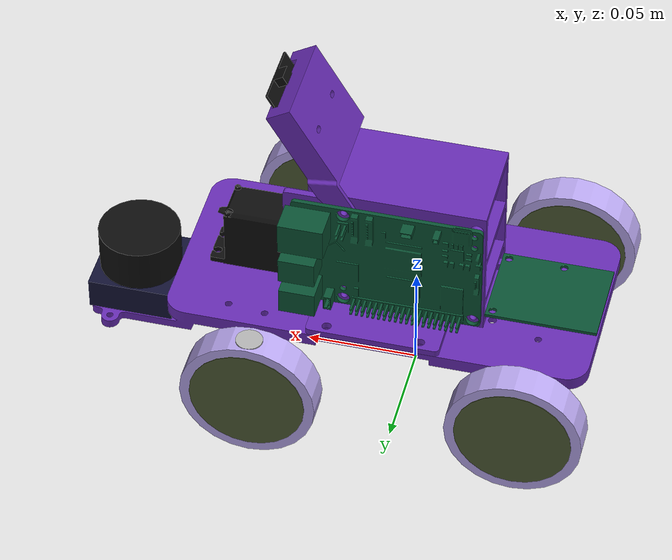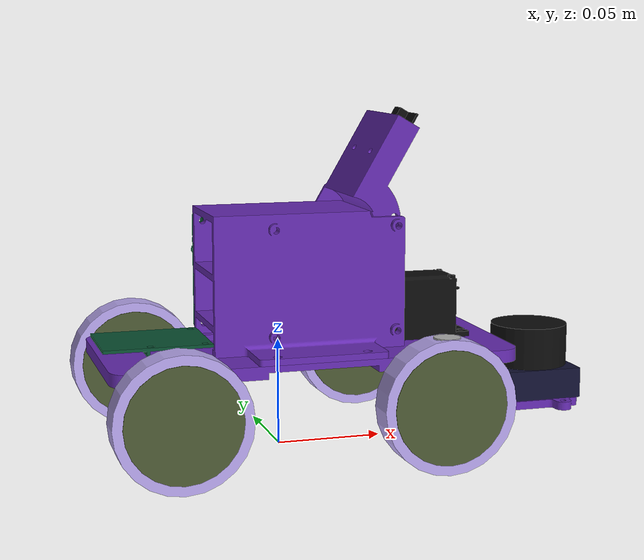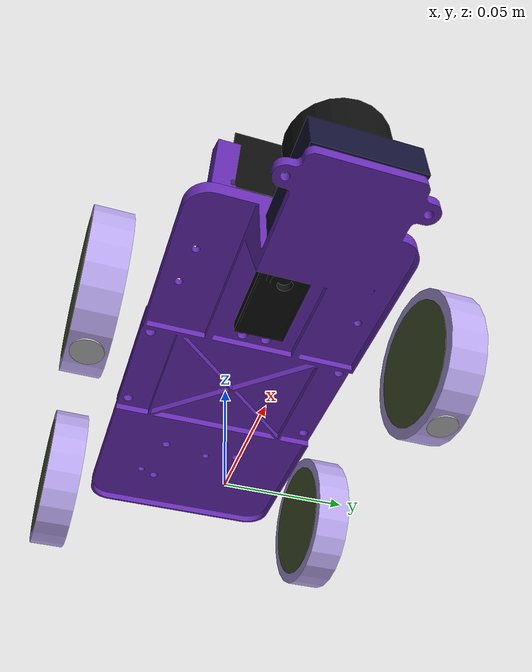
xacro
<?xml version="1.0"?>
<robot name="robotek" xmlns:xacro="http://www.ros.org/wiki/xacro">

  <!-- Gazebo 8 shares this limiter between linear m/s and angular rad/s. -->
  <xacro:arg name="ackermann_velocity_limit" default="1.0"/>
  <xacro:arg name="ackermann_steer_p_gain" default="1.0"/>
  <!-- gz-sim 8 applies this limit to BOTH linear and angular (yaw-rate) speed. -->
  <xacro:arg name="ackermann_acceleration" default="2.0"/>
  <xacro:arg name="sensor_noise" default="false"/>
  <xacro:arg name="real_sensors" default="false"/>
  <xacro:property name="real" value="${'$(arg real_sensors)' == 'true'}"/>

  <!-- ============================ parameters ============================ -->
  <xacro:property name="wheel_radius" value="0.0305"/>
  <xacro:property name="wheel_width"  value="0.0145"/>
  <xacro:property name="wheel_base"   value="0.1174"/>
  <xacro:property name="track_front"  value="0.1335"/>
  <xacro:property name="track_rear"   value="0.1235"/>
  <xacro:property name="steer_limit"  value="0.4363323129985824"/> <!-- 25 degrees -->

  <xacro:property name="chassis_len"  value="0.189"/>
  <xacro:property name="chassis_x"    value="0.00935"/>
  <xacro:property name="chassis_wid"  value="0.090"/>
  <xacro:property name="chassis_hgt"  value="0.030"/>
  <xacro:property name="chassis_z"    value="0.045"/>

  <xacro:property name="body_mass"    value="0.80"/>

  <xacro:property name="mesh_x" value="0.02495"/>
  <xacro:property name="mesh_z" value="0.0379"/>
  <xacro:macro name="step_mesh" params="name file material">
    <visual name="${name}">
      <origin xyz="${mesh_x} 0 ${mesh_z}" rpy="1.5707963 0 3.1415927"/>
      <geometry><mesh filename="package://robotek_description/meshes/${file}" scale="0.001 0.001 0.001"/></geometry>
      <material name="${material}"/>
    </visual>
  </xacro:macro>
  <xacro:property name="wheel_mass"   value="0.05"/>

  <!-- ============================= materials ============================ -->
  <material name="dark_grey"><color rgba="0.15 0.15 0.18 1.0"/></material>
  <material name="blue"><color rgba="0.10 0.25 0.65 1.0"/></material>
  <material name="black"><color rgba="0.05 0.05 0.05 1.0"/></material>
  <material name="silver"><color rgba="0.7 0.7 0.7 1.0"/></material>
  <material name="green"><color rgba="0.1 0.6 0.2 1.0"/></material>
  <material name="purple"><color rgba="0.40 0.17 0.70 1.0"/></material>
  <material name="pcb_green"><color rgba="0.04 0.32 0.20 1.0"/></material>
  <material name="lilac"><color rgba="0.72 0.65 0.93 1.0"/></material>
  <material name="olive"><color rgba="0.30 0.35 0.20 1.0"/></material>
  <material name="lidar_navy"><color rgba="0.07 0.07 0.20 1.0"/></material>

  <!-- ============================== base =============================== -->
  <link name="base_footprint"/>

  <joint name="base_footprint_joint" type="fixed">
    <parent link="base_footprint"/>
    <child link="base_link"/>
    <origin xyz="0 0 0" rpy="0 0 0"/>
  </joint>

  <link name="base_link">
    <inertial>
      <origin xyz="0 0 0.05" rpy="0 0 0"/>
      <mass value="${body_mass}"/>
      <inertia ixx="1.207e-3" ixy="0" ixz="0"
               iyy="2.756e-3" iyz="0"
               izz="2.629e-3"/>
    </inertial>

    <!-- chassis plate -->
    <xacro:step_mesh name="chassis" file="base_plate.stl" material="purple"/>
    <collision name="chassis_col">
      <origin xyz="${chassis_x} 0 ${chassis_z}" rpy="0 0 0"/>
      <geometry><box size="${chassis_len} ${chassis_wid} ${chassis_hgt}"/></geometry>
    </collision>

    <!-- LiDAR and its plate tab: the nose reaches 147.7 mm ahead of base_link, so it touches pillars
         and walls before the plate does (tab 54 mm wide, z 12 to 51 mm) -->
    <collision name="lidar_nose_col">
      <origin xyz="0.1258 0 0.0314" rpy="0 0 0"/>
      <geometry><box size="0.0438 0.054 0.0388"/></geometry>
    </collision>

    <!-- parts of the sensor plate (visual only; the LiDAR has none so it cannot occlude its own scan) -->
    <xacro:step_mesh name="case" file="case.stl" material="purple"/>
    <xacro:step_mesh name="camera_support" file="camera_support.stl" material="purple"/>
    <xacro:step_mesh name="camera_body" file="camera.stl" material="black"/>
    <xacro:step_mesh name="steering_servo" file="servo.stl" material="black"/>
    <xacro:step_mesh name="raspberry_pi" file="raspberry_pi.stl" material="pcb_green"/>
    <xacro:step_mesh name="driver_board" file="driver_board.stl" material="pcb_green"/>
    <visual name="lidar_body">
      <origin xyz="0.12835 0 0.0233" rpy="0 0 0"/>
      <geometry><box size="0.0386 0.0386 0.0146"/></geometry>
      <material name="lidar_navy"/>
    </visual>
    <visual name="lidar_head">
      <origin xyz="0.12835 0 0.0407" rpy="0 0 0"/>
      <geometry><cylinder radius="0.0187" length="0.0202"/></geometry>
      <material name="black"/>
    </visual>
  </link>

  <!-- ============================ IMU link ============================= -->
  <link name="imu_link">
    <inertial><mass value="0.01"/>
      <inertia ixx="1e-6" ixy="0" ixz="0" iyy="1e-6" iyz="0" izz="1e-6"/>
    </inertial>
    <visual><geometry><box size="0.02 0.02 0.005"/></geometry><material name="silver"/></visual>
  </link>
  <joint name="imu_joint" type="fixed">
    <parent link="base_link"/><child link="imu_link"/>
    <origin xyz="0 0 0.061" rpy="0 0 0"/>
  </joint>

  <!-- =========================== LiDAR link ============================ -->
  <!-- STL-19P TOF lidar: 38.59 x 38.59 x 34.8 mm, mounted low at the front
       so the scan plane sits within the 100 mm-high walls. -->
  <link name="lidar_link">
    <inertial><origin xyz="0 0 0.0175"/><mass value="0.10"/>
      <inertia ixx="4.2e-5" ixy="0" ixz="0" iyy="4.2e-5" iyz="0" izz="4.6e-5"/>
    </inertial>
    <!-- No visual: gpu_lidar would otherwise hit its own housing at the scan
         plane and self-occlude. The housing is cosmetic only. -->
  </link>
  <joint name="lidar_joint" type="fixed">
    <parent link="base_link"/><child link="lidar_link"/>
    <origin xyz="0.128 0 0.030" rpy="0 0 0"/>
  </joint>

  <!-- =========================== camera link =========================== -->
  <link name="camera_link">
    <inertial><mass value="0.03"/>
      <inertia ixx="2e-6" ixy="0" ixz="0" iyy="2e-6" iyz="0" izz="2e-6"/>
    </inertial>
  </link>
  <joint name="camera_joint" type="fixed">
    <parent link="base_link"/><child link="camera_link"/>
    <!-- mounted behind the lidar and pitched ~23 deg down toward the floor -->
    <origin xyz="0.0565 0 ${0.1446 if real else 0.095}" rpy="0 ${0.17 if real else 0.4} ${0.077 if real else 0}"/>
  </joint>

  <!-- ======================= steering knuckles ========================= -->
  <xacro:macro name="steer_knuckle" params="side sign">
    <link name="front_${side}_steer_link">
      <inertial><mass value="0.02"/>
        <inertia ixx="5e-7" ixy="0" ixz="0" iyy="5e-7" iyz="0" izz="5e-7"/>
      </inertial>
      <visual><geometry><cylinder radius="0.006" length="${wheel_radius*2}"/></geometry>
        <material name="silver"/></visual>
    </link>
    <joint name="front_${side}_steering_joint" type="revolute">
      <parent link="base_link"/>
      <child link="front_${side}_steer_link"/>
      <origin xyz="${wheel_base/2} ${sign*track_front/2} ${wheel_radius}" rpy="0 0 0"/>
      <axis xyz="0 0 1"/>
      <limit lower="${-steer_limit}" upper="${steer_limit}" effort="5.0" velocity="5.0"/>
    </joint>
  </xacro:macro>

  <xacro:steer_knuckle side="left"  sign="1"/>
  <xacro:steer_knuckle side="right" sign="-1"/>

  <!-- ============================== wheels ============================= -->
  <xacro:macro name="wheel" params="name parent x y z">
    <link name="${name}">
      <inertial>
        <mass value="${wheel_mass}"/>
        <inertia ixx="1.185e-5" ixy="0" ixz="0"
                 iyy="1.185e-5" iyz="0" izz="2.25e-5"/>
      </inertial>
      <visual name="tyre"><origin rpy="1.5708 0 0"/>
        <geometry><cylinder radius="${wheel_radius}" length="${wheel_width}"/></geometry>
        <material name="lilac"/></visual>
      <visual name="hub"><origin rpy="1.5708 0 0"/>
        <geometry><cylinder radius="${wheel_radius-0.0045}" length="${wheel_width+0.0006}"/></geometry>
        <material name="olive"/></visual>
      <collision><origin rpy="1.5708 0 0"/>
        <geometry><cylinder radius="${wheel_radius}" length="${wheel_width}"/></geometry>
      </collision>
    </link>
    <joint name="${name}_joint" type="continuous">
      <parent link="${parent}"/>
      <child link="${name}"/>
      <origin xyz="${x} ${y} ${z}" rpy="0 0 0"/>
      <axis xyz="0 1 0"/>
    </joint>
  </xacro:macro>

  <!-- Front wheels: child of their steering knuckle (already at wheel_radius) -->
  <xacro:wheel name="front_left_wheel"  parent="front_left_steer_link"  x="0" y="0" z="0"/>
  <xacro:wheel name="front_right_wheel" parent="front_right_steer_link" x="0" y="0" z="0"/>
  <!-- Rear wheels: directly on the chassis at wheel_radius height -->
  <xacro:wheel name="rear_left_wheel"   parent="base_link" x="${-wheel_base/2}" y="${track_rear/2}"  z="${wheel_radius}"/>
  <xacro:wheel name="rear_right_wheel"  parent="base_link" x="${-wheel_base/2}" y="${-track_rear/2}" z="${wheel_radius}"/>

  <!-- ========================= Gazebo plugins ========================= -->
  <gazebo>
    <plugin filename="gz-sim-ackermann-steering-system"
            name="gz::sim::systems::AckermannSteering">
      <left_joint>rear_left_wheel_joint</left_joint>
      <right_joint>rear_right_wheel_joint</right_joint>
      <left_steering_joint>front_left_steering_joint</left_steering_joint>
      <right_steering_joint>front_right_steering_joint</right_steering_joint>
      <kingpin_width>${track_front}</kingpin_width>
      <steering_limit>${steer_limit}</steering_limit>
      <steer_p_gain>$(arg ackermann_steer_p_gain)</steer_p_gain>
      <wheel_base>${wheel_base}</wheel_base>
      <wheel_separation>${track_rear}</wheel_separation>
      <wheel_radius>${wheel_radius}</wheel_radius>
      <min_velocity>-${float(xacro.arg('ackermann_velocity_limit'))}</min_velocity>
      <max_velocity>$(arg ackermann_velocity_limit)</max_velocity>
      <min_acceleration>-$(arg ackermann_acceleration)</min_acceleration>
      <max_acceleration>$(arg ackermann_acceleration)</max_acceleration>
      <odom_topic>/odom</odom_topic>
      <odom_publish_frequency>50</odom_publish_frequency>
    </plugin>

    <plugin filename="gz-sim-joint-state-publisher-system"
            name="gz::sim::systems::JointStatePublisher">
      <topic>/joint_states</topic>
      <joint_name>front_left_steering_joint</joint_name>
      <joint_name>front_right_steering_joint</joint_name>
      <joint_name>front_left_wheel_joint</joint_name>
      <joint_name>front_right_wheel_joint</joint_name>
      <joint_name>rear_left_wheel_joint</joint_name>
      <joint_name>rear_right_wheel_joint</joint_name>
    </plugin>

    <!-- Ground-truth odometry from the physics engine (not dead-reckoning) -->
    <plugin filename="gz-sim-odometry-publisher-system"
            name="gz::sim::systems::OdometryPublisher">
      <odom_publish_frequency>50</odom_publish_frequency>
      <odom_topic>/model/robotek/odometry_gt</odom_topic>
      <dimensions>2</dimensions>
    </plugin>
  </gazebo>

  <!-- ============================ sensors ============================= -->
  <gazebo reference="lidar_link">
    <sensor name="lidar" type="gpu_lidar">
      <!-- real: sim_scan_model adds the LD19 dropouts and republishes /scan -->
      <topic>${'/scan_gz' if real else '/scan'}</topic>
      <gz_frame_id>lidar_link</gz_frame_id>
      <update_rate>10</update_rate>
      <always_on>1</always_on>
      <visualize>true</visualize>
      <ray>
        <scan>
          <horizontal>
            <!-- 5000 Hz ranging / 10 Hz rotation ~= 500 samples per revolution -->
            <samples>${306 if real else 500}</samples>
            <resolution>1</resolution>
            <min_angle>${-1.91986 if real else -3.14159}</min_angle>
            <max_angle>${1.91986 if real else 3.14159}</max_angle>
          </horizontal>
        </scan>
        <range>
          <min>0.03</min>
          <max>12.0</max>
          <resolution>0.01</resolution>
        </range>
        <xacro:if value="$(arg sensor_noise)">
          <!-- real: per-ray sigma measured 5 mm median, 19 mm p90 (edges, dark surfaces) -->
          <noise><type>gaussian</type><mean>0.0</mean><stddev>${0.008 if real else 0.015}</stddev></noise>
        </xacro:if>
      </ray>
    </sensor>
  </gazebo>

  <gazebo reference="camera_link">
    <sensor name="camera" type="camera">
      <topic>/camera/image</topic>
      <gz_frame_id>camera_link</gz_frame_id>
      <update_rate>${6 if real else 30}</update_rate>
      <always_on>1</always_on>
      <visualize>true</visualize>
      <camera>
        <!-- real: effective focal 486 px at 640 px wide -> ~67 deg (column -> LiDAR bearing; the
             real lens has barrel distortion, ~590 px near the centre, not modelled) -->
        <horizontal_fov>${1.164 if real else 1.047}</horizontal_fov>
        <image><width>640</width><height>480</height><format>R8G8B8</format></image>
        <clip><near>0.02</near><far>20</far></clip>
      </camera>
    </sensor>
  </gazebo>

  <gazebo reference="imu_link">
    <sensor name="imu" type="imu">
      <topic>/imu</topic>
      <gz_frame_id>imu_link</gz_frame_id>
      <update_rate>${50 if real else 100}</update_rate>
      <always_on>1</always_on>
      <xacro:if value="$(arg sensor_noise)">
        <imu>
          <angular_velocity>
            <z><noise type="gaussian"><mean>0.0</mean><stddev>${0.0019 if real else 0.003}</stddev>
              <bias_mean>${0.006 if real else 0.002}</bias_mean><bias_stddev>0.0005</bias_stddev></noise></z>
          </angular_velocity>
        </imu>
      </xacro:if>
    </sensor>
  </gazebo>

</robot>
